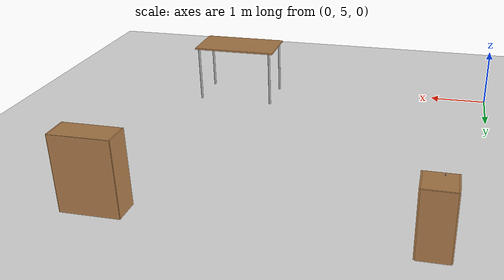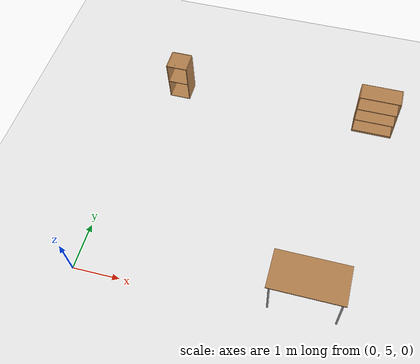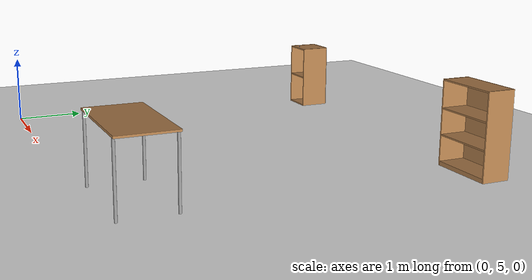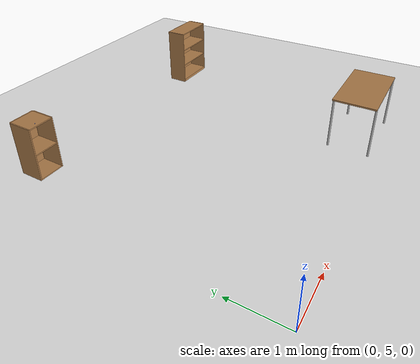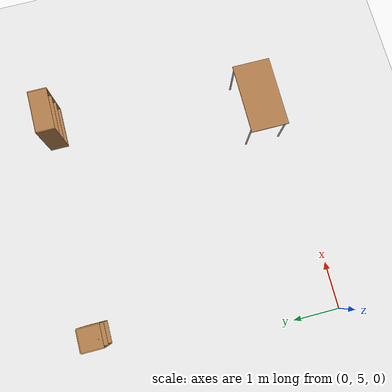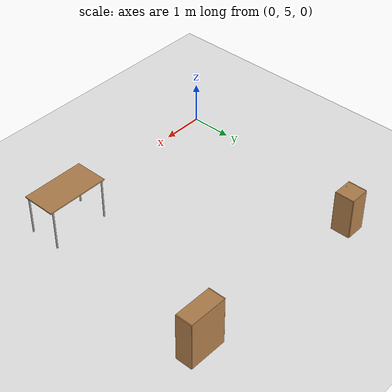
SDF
<sdf version="1.7">
 <world name="default">
  <model name="ground_plane">
   <static>1</static>
   <link name="link">
    <collision name="collision">
     <geometry><plane><normal>0 0 1</normal><size>100 100</size></plane></geometry>
     <surface>
      <contact><collide_bitmask>65535</collide_bitmask></contact>
      <friction><ode><mu>100</mu><mu2>50</mu2></ode></friction>
     </surface>
    </collision>
    <visual name="visual">
     <cast_shadows>0</cast_shadows>
     <geometry><plane><normal>0 0 1</normal><size>100 100</size></plane></geometry>
     <material>
      <script><uri>file://media/materials/scripts/gazebo.material</uri><name>Gazebo/White</name></script>
     </material>
    </visual>
   </link>
  </model>
  <model name="bookshelf">
   <static>1</static>
   <link name="link">
    <inertial><mass>1</mass></inertial>
    <collision name="back">
     <pose>0 0.005 0.6 0 -0 0</pose>
     <geometry><box><size>0.9 0.01 1.2</size></box></geometry>
    </collision>
    <visual name="visual1">
     <pose>0 0.005 0.6 0 -0 0</pose>
     <geometry><box><size>0.9 0.01 1.2</size></box></geometry>
     <material>
      <script><uri>file://media/materials/scripts/gazebo.material</uri><name>Gazebo/Wood</name></script>
     </material>
    </visual>
    <collision name="left_side">
     <pose>0.45 -0.195 0.6 0 -0 0</pose>
     <geometry><box><size>0.02 0.4 1.2</size></box></geometry>
    </collision>
    <visual name="visual2">
     <pose>0.45 -0.195 0.6 0 -0 0</pose>
     <geometry><box><size>0.02 0.4 1.2</size></box></geometry>
     <material>
      <script><uri>file://media/materials/scripts/gazebo.material</uri><name>Gazebo/Wood</name></script>
     </material>
    </visual>
    <collision name="right_side">
     <pose>-0.45 -0.195 0.6 0 -0 0</pose>
     <geometry><box><size>0.02 0.4 1.2</size></box></geometry>
    </collision>
    <visual name="visual3">
     <pose>-0.45 -0.195 0.6 0 -0 0</pose>
     <geometry><box><size>0.02 0.4 1.2</size></box></geometry>
     <material>
      <script><uri>file://media/materials/scripts/gazebo.material</uri><name>Gazebo/Wood</name></script>
     </material>
    </visual>
    <collision name="bottom">
     <pose>0 -0.195 0.03 0 -0 0</pose>
     <geometry><box><size>0.88 0.4 0.06</size></box></geometry>
    </collision>
    <visual name="visual4">
     <pose>0 -0.195 0.03 0 -0 0</pose>
     <geometry><box><size>0.88 0.4 0.06</size></box></geometry>
     <material>
      <script><uri>file://media/materials/scripts/gazebo.material</uri><name>Gazebo/Wood</name></script>
     </material>
    </visual>
    <collision name="top">
     <pose>0 -0.195 1.19 0 -0 0</pose>
     <geometry><box><size>0.88 0.4 0.02</size></box></geometry>
    </collision>
    <visual name="visual5">
     <pose>0 -0.195 1.19 0 -0 0</pose>
     <geometry><box><size>0.88 0.4 0.02</size></box></geometry>
     <material>
      <script><uri>file://media/materials/scripts/gazebo.material</uri><name>Gazebo/Wood</name></script>
     </material>
    </visual>
    <collision name="low_shelf">
     <pose>0 -0.195 0.43 0 -0 0</pose>
     <geometry><box><size>0.88 0.4 0.02</size></box></geometry>
    </collision>
    <visual name="visual6">
     <pose>0 -0.195 0.43 0 -0 0</pose>
     <geometry><box><size>0.88 0.4 0.02</size></box></geometry>
     <material>
      <script><uri>file://media/materials/scripts/gazebo.material</uri><name>Gazebo/Wood</name></script>
     </material>
    </visual>
    <collision name="high_shelf">
     <pose>0 -0.195 0.8 0 -0 0</pose>
     <geometry><box><size>0.88 0.4 0.02</size></box></geometry>
    </collision>
    <visual name="visual7">
     <pose>0 -0.195 0.8 0 -0 0</pose>
     <geometry><box><size>0.88 0.4 0.02</size></box></geometry>
     <material>
      <script><uri>file://media/materials/scripts/gazebo.material</uri><name>Gazebo/Wood</name></script>
     </material>
    </visual>
   </link>
   <pose>5.40785 10.2242 0 0 -0 0</pose>
  </model>
  <model name="cabinet">
   <static>1</static>
   <link name="cabinet_bottom_plate">
    <inertial>
     <pose>0 0 -1 0 -0 0</pose>
     <inertia><ixx>2.05</ixx><ixy>0</ixy><ixz>0</ixz><iyy>2.05</iyy><iyz>0</iyz><izz>2.05</izz></inertia>
     <mass>25</mass>
    </inertial>
    <collision name="cabinet_bottom_plate_geom">
     <pose>0 0 0.01 0 -0 0</pose>
     <geometry><box><size>0.45 0.45 0.02</size></box></geometry>
    </collision>
    <visual name="cabinet_bottom_plate_geom_visual">
     <pose>0 0 0.01 0 -0 0</pose>
     <geometry><box><size>0.45 0.45 0.02</size></box></geometry>
     <material>
      <script><uri>file://media/materials/scripts/gazebo.material</uri><name>Gazebo/Wood</name></script>
     </material>
    </visual>
    <collision name="cabinet_bottom_plate_geom_cabinet_back_plate">
     <pose>0.235 0 0.51 0 -0 0</pose>
     <geometry><box><size>0.02 0.45 1.02</size></box></geometry>
    </collision>
    <visual name="cabinet_bottom_plate_geom_cabinet_back_plate_visual">
     <pose>0.235 0 0.51 0 -0 0</pose>
     <geometry><box><size>0.02 0.45 1.02</size></box></geometry>
     <material>
      <script><uri>file://media/materials/scripts/gazebo.material</uri><name>Gazebo/Wood</name></script>
     </material>
    </visual>
    <collision name="cabinet_bottom_plate_geom_cabinet_left_plate">
     <pose>0 0.235 0.51 0 -0 0</pose>
     <geometry><box><size>0.45 0.02 1.02</size></box></geometry>
    </collision>
    <visual name="cabinet_bottom_plate_geom_cabinet_left_plate_visual">
     <pose>0 0.235 0.51 0 -0 0</pose>
     <geometry><box><size>0.45 0.02 1.02</size></box></geometry>
     <material>
      <script><uri>file://media/materials/scripts/gazebo.material</uri><name>Gazebo/Wood</name></script>
     </material>
    </visual>
    <collision name="cabinet_bottom_plate_geom_cabinet_middle_plate">
     <pose>0 0 0.51 0 -0 0</pose>
     <geometry><box><size>0.45 0.45 0.02</size></box></geometry>
    </collision>
    <visual name="cabinet_bottom_plate_geom_cabinet_middle_plate_visual">
     <pose>0 0 0.51 0 -0 0</pose>
     <geometry><box><size>0.45 0.45 0.02</size></box></geometry>
     <material>
      <script><uri>file://media/materials/scripts/gazebo.material</uri><name>Gazebo/Wood</name></script>
     </material>
    </visual>
    <collision name="cabinet_bottom_plate_geom_cabinet_right_plate">
     <pose>0 -0.235 0.51 0 -0 0</pose>
     <geometry><box><size>0.45 0.02 1.02</size></box></geometry>
    </collision>
    <visual name="cabinet_bottom_plate_geom_cabinet_right_plate_visual">
     <pose>0 -0.235 0.51 0 -0 0</pose>
     <geometry><box><size>0.45 0.02 1.02</size></box></geometry>
     <material>
      <script><uri>file://media/materials/scripts/gazebo.material</uri><name>Gazebo/Wood</name></script>
     </material>
    </visual>
    <collision name="cabinet_bottom_plate_geom_cabinet_top_plate">
     <pose>0 0 1.01 0 -0 0</pose>
     <geometry><box><size>0.45 0.45 0.02</size></box></geometry>
    </collision>
    <visual name="cabinet_bottom_plate_geom_cabinet_top_plate_visual">
     <pose>0 0 1.01 0 -0 0</pose>
     <geometry><box><size>0.45 0.45 0.02</size></box></geometry>
     <material>
      <script><uri>file://media/materials/scripts/gazebo.material</uri><name>Gazebo/Wood</name></script>
     </material>
    </visual>
   </link>
   <pose>0.747399 10.0529 0 0 -0 1.5708</pose>
  </model>
  <model name="marble_1_5cm">
   <link name="link">
    <pose>0 0 0.0075 0 -0 0</pose>
    <inertial>
     <mass>0.0062</mass>
     <inertia>
      <ixx>1.395e-07</ixx>
      <ixy>0</ixy>
      <ixz>0</ixz>
      <iyy>1.395e-07</iyy>
      <iyz>0</iyz>
      <izz>1.395e-07</izz>
     </inertia>
    </inertial>
    <collision name="collision">
     <geometry><sphere><radius>0.0075</radius></sphere></geometry>
     <surface>
      <contact>
       <poissons_ratio>0.22</poissons_ratio>
       <elastic_modulus>5.1e+10</elastic_modulus>
       <ode><kp>100000</kp><kd>100</kd><max_vel>100</max_vel><min_depth>0.001</min_depth></ode>
      </contact>
      <friction>
       <torsional>
        <coefficient>1</coefficient>
        <use_patch_radius>0</use_patch_radius>
        <surface_radius>0.01</surface_radius>
       </torsional>
      </friction>
     </surface>
    </collision>
    <visual name="visual">
     <geometry><sphere><radius>0.0075</radius></sphere></geometry>
     <material>
      <script><uri>file://media/materials/scripts/gazebo.material</uri><name>Gazebo/Blue</name></script>
     </material>
    </visual>
    <velocity_decay><linear>0</linear><angular>0.005</angular></velocity_decay>
   </link>
   <pose>0.693086 9.89516 1.01903 -0.080748 0.027771 -0.001122</pose>
  </model>
  <model name="table">
   <static>1</static>
   <link name="link">
    <collision name="surface">
     <pose>0 0 1 0 -0 0</pose>
     <geometry><box><size>1.5 0.8 0.03</size></box></geometry>
     <surface><friction><ode><mu>0.6</mu><mu2>0.6</mu2></ode></friction></surface>
    </collision>
    <visual name="visual1">
     <pose>0 0 1 0 -0 0</pose>
     <geometry><box><size>1.5 0.8 0.03</size></box></geometry>
     <material>
      <script><uri>file://media/materials/scripts/gazebo.material</uri><name>Gazebo/Wood</name></script>
     </material>
    </visual>
    <collision name="front_left_leg">
     <pose>0.68 0.38 0.5 0 -0 0</pose>
     <geometry><cylinder><radius>0.02</radius><length>1</length></cylinder></geometry>
    </collision>
    <visual name="front_left_leg">
     <pose>0.68 0.38 0.5 0 -0 0</pose>
     <geometry><cylinder><radius>0.02</radius><length>1</length></cylinder></geometry>
     <material>
      <script><uri>file://media/materials/scripts/gazebo.material</uri><name>Gazebo/Grey</name></script>
     </material>
    </visual>
    <collision name="front_right_leg">
     <pose>0.68 -0.38 0.5 0 -0 0</pose>
     <geometry><cylinder><radius>0.02</radius><length>1</length></cylinder></geometry>
    </collision>
    <visual name="front_right_leg">
     <pose>0.68 -0.38 0.5 0 -0 0</pose>
     <geometry><cylinder><radius>0.02</radius><length>1</length></cylinder></geometry>
     <material>
      <script><uri>file://media/materials/scripts/gazebo.material</uri><name>Gazebo/Grey</name></script>
     </material>
    </visual>
    <collision name="back_right_leg">
     <pose>-0.68 -0.38 0.5 0 -0 0</pose>
     <geometry><cylinder><radius>0.02</radius><length>1</length></cylinder></geometry>
    </collision>
    <visual name="back_right_leg">
     <pose>-0.68 -0.38 0.5 0 -0 0</pose>
     <geometry><cylinder><radius>0.02</radius><length>1</length></cylinder></geometry>
     <material>
      <script><uri>file://media/materials/scripts/gazebo.material</uri><name>Gazebo/Grey</name></script>
     </material>
    </visual>
    <collision name="back_left_leg">
     <pose>-0.68 0.38 0.5 0 -0 0</pose>
     <geometry><cylinder><radius>0.02</radius><length>1</length></cylinder></geometry>
    </collision>
    <visual name="back_left_leg">
     <pose>-0.68 0.38 0.5 0 -0 0</pose>
     <geometry><cylinder><radius>0.02</radius><length>1</length></cylinder></geometry>
     <material>
      <script><uri>file://media/materials/scripts/gazebo.material</uri><name>Gazebo/Grey</name></script>
     </material>
    </visual>
   </link>
   <pose>4.68243 5.54791 0 0 -0 0</pose>
  </model>
 </world>
</sdf>
